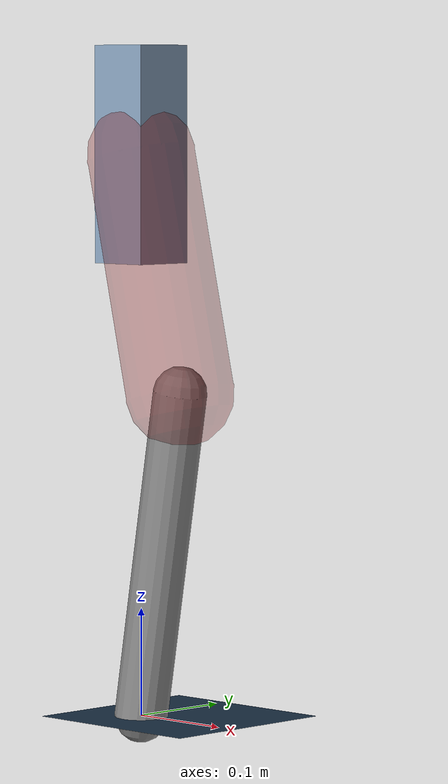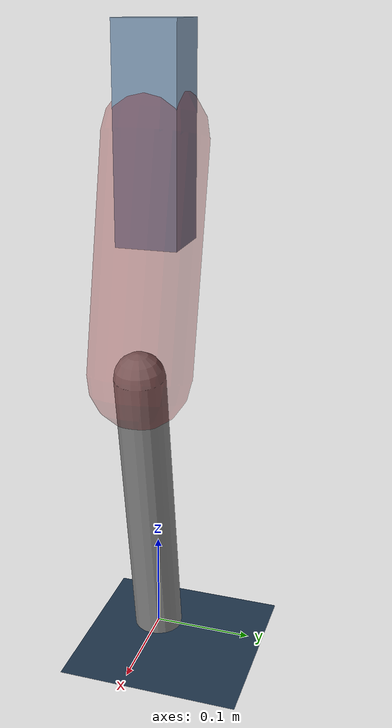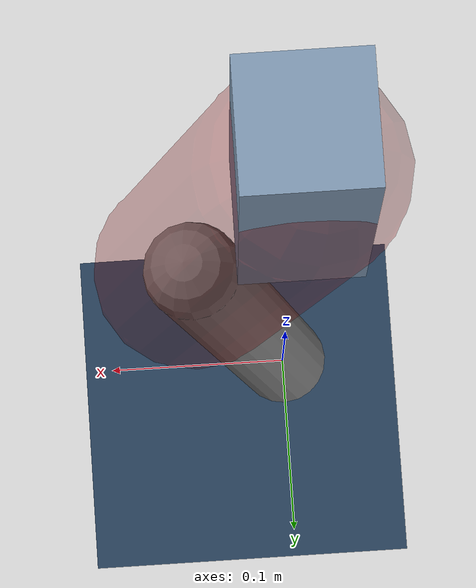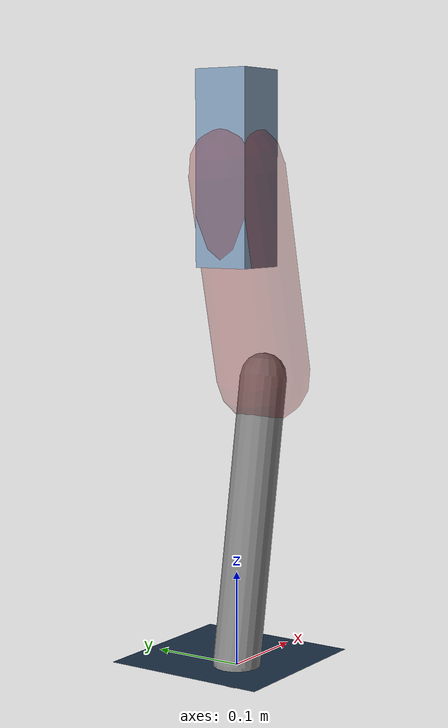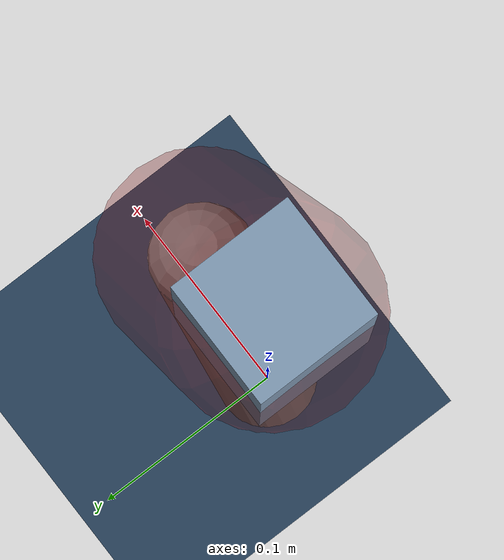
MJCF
<mujoco model="Hopper2D">
	<compiler inertiafromgeom="true" angle="radian" />
	<option timestep="0.001" integrator="implicit" cone="elliptic" solver="Newton" tolerance="1e-10" />

	<default>
		<geom contype="1" conaffinity="1" condim="3" friction="2 0.005 0.0001" solref="0.005 1" />
		<joint limited="true" damping="0.1" />
	</default>

	<asset>
		<texture name="skybox" type="skybox" builtin="gradient" rgb1=".4 .6 .8" rgb2="0 0 0" width="800" height="800" />
		<texture name="grid" type="2d" builtin="checker" rgb1=".1 .2 .3" rgb2=".2 .3 .4" width="300" height="300" mark="edge" markrgb=".2 .3 .4" />
		<material name="ground" texture="grid" texrepeat="1 1" texuniform="true" reflectance="0.1" />
		<material name="leg" rgba="0.5 0.6 0.7 1" />
	</asset>

	<worldbody>

		<geom name="floor" type="plane" size="5 5 0.25" material="ground" />

		<light directional="false" diffuse="0.8 0.8 0.8" specular="0.3 0.3 0.3" pos="0 0 2" dir="0 0 -1" />
		<light mode="targetbodycom" target="base" directional="false" diffuse="0.8 0.8 0.8" specular="0.3 0.3 0.3" pos="0 0 2" dir="0 0 -1" />

		<camera name="fixed" pos="0 -2 1" xyaxes="1 0 0 0 0 1" />
		<camera name="tracking" mode="trackcom" pos="0 -3 1" />

		<body name="root" pos="0 0 0.5206113695765713">
			<joint name="slide_x" type="slide" axis="1 0 0" range="-100 100" />
			<joint name="slide_z" type="slide" axis="0 0 1" range="0 10" />

			<body name="base" pos="0 0 0">
				<geom name="torso" type="box" size="0.03 0.03 0.1" mass="1.4929999999999999" material="leg" />

				<body name="link1" pos="0 0 0" euler="0 1.3424559625240882 0">
					<joint type="hinge" axis="0 -1 0" pos="0 0 0" name="hinge1" limited="true" range="-3.14 3.14" stiffness="0" damping="0.1" />
					<geom name="thigh" type="capsule" fromto="0 0 0 0.22353795646927282 0 0" size="0.05" rgba="0.5 0 0 0.3" mass="0.788644891173182" />

					<body name="link2" pos="0.22353795646927282 0 0" euler="0 0.3938778999394397 0">
						<joint type="hinge" axis="0 -1 0" pos="0 0 0" name="hinge2" limited="true" range="-3.14 3.14" stiffness="0" damping="0.1" />
						<geom name="shank" type="capsule" fromto="0 0 0 0.3070734131072984 0 0" size="0.025" mass="0.4891587304858387" />

					</body>
				</body>
			</body>
		</body>
	</worldbody>

	<actuator>
		<motor name="torque1" joint="hinge1" ctrlrange="-36.664378334657265 36.664378334657265" ctrllimited="true" gear="1" />
		<motor name="torque2" joint="hinge2" ctrlrange="-28.465109823407836 28.465109823407836" ctrllimited="true" gear="1" />
	</actuator>
</mujoco>
